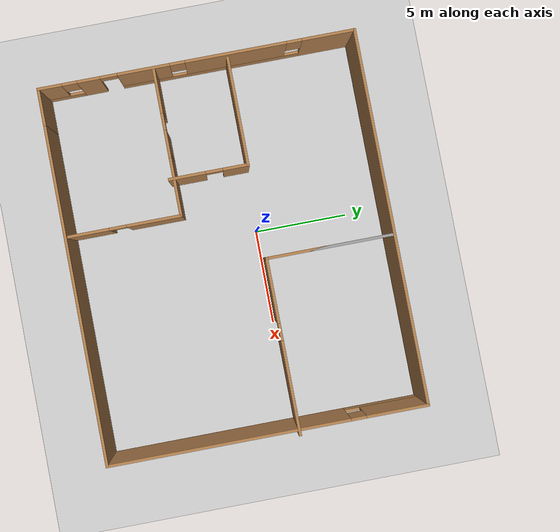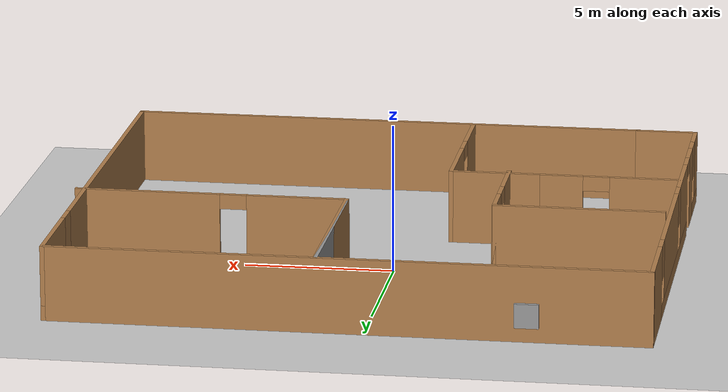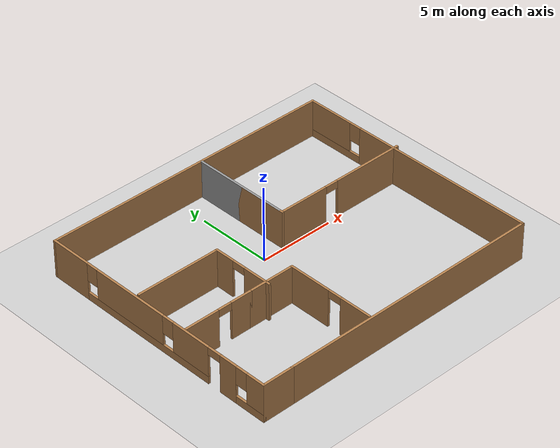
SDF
<sdf version="1.7">
 <world name="default">
  <light name="sun" type="directional">
   <pose>0 0 10 0 -0 0</pose>
   <diffuse>0.8 0.8 0.8 1</diffuse>
   <specular>0.2 0.2 0.2 1</specular>
   <attenuation>
    <range>1000</range>
    <constant>0.9</constant>
    <linear>0.01</linear>
    <quadratic>0.001</quadratic>
   </attenuation>
   <direction>-0.5 0.1 -0.9</direction>
   <spot><inner_angle>0</inner_angle><outer_angle>0</outer_angle><falloff>0</falloff></spot>
  </light>
  <model name="ground_plane">
   <static>1</static>
   <link name="link">
    <collision name="collision">
     <geometry><plane><normal>0 0 1</normal><size>100 100</size></plane></geometry>
     <surface>
      <contact><collide_bitmask>65535</collide_bitmask></contact>
      <friction><ode><mu>100</mu><mu2>50</mu2></ode></friction>
     </surface>
    </collision>
    <visual name="visual">
     <cast_shadows>0</cast_shadows>
     <geometry><plane><normal>0 0 1</normal><size>100 100</size></plane></geometry>
     <material>
      <script><uri>file://media/materials/scripts/gazebo.material</uri><name>Gazebo/Grey</name></script>
     </material>
    </visual>
   </link>
  </model>
  <gravity>0 0 -9.8</gravity>
  <magnetic_field>6e-06 2.3e-05 -4.2e-05</magnetic_field>
  <atmosphere type="adiabatic"/>
  <physics type="ode">
   <max_step_size>0.001</max_step_size>
   <real_time_factor>1</real_time_factor>
   <real_time_update_rate>1000</real_time_update_rate>
  </physics>
  <scene><ambient>0.4 0.4 0.4 1</ambient><background>0.7 0.7 0.7 1</background><shadows>1</shadows></scene>
  <spherical_coordinates>
   <surface_model>EARTH_WGS84</surface_model>
   <latitude_deg>0</latitude_deg>
   <longitude_deg>0</longitude_deg>
   <elevation>0</elevation>
   <heading_deg>0</heading_deg>
  </spherical_coordinates>
  <model name="nha">
   <pose>0.71255 -1.43699 0 0 -0 0</pose>
   <link name="Wall_10">
    <pose>9.67365 -0 0 0 -0 1.5708</pose>
    <visual name="Wall_10_Visual_0">
     <pose>-2.03199 0 1.25 0 -0 0</pose>
     <geometry><box><size>12.686 0.15 2.5</size></box></geometry>
     <material>
      <script><uri>file://media/materials/scripts/gazebo.material</uri><name>Gazebo/Wood</name></script>
      <ambient>1 1 1 1</ambient>
     </material>
     <meta><layer>0</layer></meta>
    </visual>
    <collision name="Wall_10_Collision_0">
     <geometry><box><size>12.686 0.15 2.5</size></box></geometry>
     <pose>-2.03199 0 1.25 0 -0 0</pose>
    </collision>
    <visual name="Wall_10_Visual_1">
     <pose>6.34301 0 0.25 0 -0 0</pose>
     <geometry><box><size>4.06397 0.15 0.5</size></box></geometry>
     <material>
      <script><uri>file://media/materials/scripts/gazebo.material</uri><name>Gazebo/Wood</name></script>
      <ambient>1 1 1 1</ambient>
     </material>
     <meta><layer>0</layer></meta>
    </visual>
    <collision name="Wall_10_Collision_1">
     <geometry><box><size>4.06397 0.15 0.5</size></box></geometry>
     <pose>6.34301 0 0.25 0 -0 0</pose>
    </collision>
    <visual name="Wall_10_Visual_2">
     <pose>6.74301 0 1.5 0 -0 0</pose>
     <geometry><box><size>3.26397 0.15 2</size></box></geometry>
     <material>
      <script><uri>file://media/materials/scripts/gazebo.material</uri><name>Gazebo/Wood</name></script>
      <ambient>1 1 1 1</ambient>
     </material>
     <meta><layer>0</layer></meta>
    </visual>
    <collision name="Wall_10_Collision_2">
     <geometry><box><size>3.26397 0.15 2</size></box></geometry>
     <pose>6.74301 0 1.5 0 -0 0</pose>
    </collision>
    <visual name="Wall_10_Visual_3">
     <pose>4.71103 0 1.9 0 -0 0</pose>
     <geometry><box><size>0.8 0.15 1.2</size></box></geometry>
     <material>
      <script><uri>file://media/materials/scripts/gazebo.material</uri><name>Gazebo/Wood</name></script>
      <ambient>1 1 1 1</ambient>
     </material>
     <meta><layer>0</layer></meta>
    </visual>
    <collision name="Wall_10_Collision_3">
     <geometry><box><size>0.8 0.15 1.2</size></box></geometry>
     <pose>4.71103 0 1.9 0 -0 0</pose>
    </collision>
   </link>
   <link name="Wall_11">
    <collision name="Wall_11_Collision">
     <geometry><box><size>19.75 0.15 2.5</size></box></geometry>
     <pose>0 0 1.25 0 -0 0</pose>
    </collision>
    <visual name="Wall_11_Visual">
     <pose>0 0 1.25 0 -0 0</pose>
     <geometry><box><size>19.75 0.15 2.5</size></box></geometry>
     <material>
      <script><uri>file://media/materials/scripts/gazebo.material</uri><name>Gazebo/Wood</name></script>
      <ambient>1 1 1 1</ambient>
     </material>
     <meta><layer>0</layer></meta>
    </visual>
    <pose>-0.126353 8.3 0 0 -0 3.14159</pose>
   </link>
   <link name="Wall_12">
    <pose>-9.92635 -0 0 0 -0 -1.5708</pose>
    <visual name="Wall_12_Visual_0">
     <pose>-6.95237 0 1.25 0 -0 0</pose>
     <geometry><box><size>2.84526 0.15 2.5</size></box></geometry>
     <material>
      <script><uri>file://media/materials/scripts/gazebo.material</uri><name>Gazebo/Wood</name></script>
      <ambient>1 1 1 1</ambient>
     </material>
     <meta><layer>0</layer></meta>
    </visual>
    <collision name="Wall_12_Collision_0">
     <geometry><box><size>2.84526 0.15 2.5</size></box></geometry>
     <pose>-6.95237 0 1.25 0 -0 0</pose>
    </collision>
    <visual name="Wall_12_Visual_1">
     <pose>5.67347 0 1.25 0 -0 0</pose>
     <geometry><box><size>1.21323 0.15 2.5</size></box></geometry>
     <material>
      <script><uri>file://media/materials/scripts/gazebo.material</uri><name>Gazebo/Wood</name></script>
      <ambient>1 1 1 1</ambient>
     </material>
     <meta><layer>0</layer></meta>
    </visual>
    <collision name="Wall_12_Collision_1">
     <geometry><box><size>1.21323 0.15 2.5</size></box></geometry>
     <pose>5.67347 0 1.25 0 -0 0</pose>
    </collision>
    <visual name="Wall_12_Visual_2">
     <pose>-0.681446 0 0.25 0 -0 0</pose>
     <geometry><box><size>9.69659 0.15 0.5</size></box></geometry>
     <material>
      <script><uri>file://media/materials/scripts/gazebo.material</uri><name>Gazebo/Wood</name></script>
      <ambient>1 1 1 1</ambient>
     </material>
     <meta><layer>0</layer></meta>
    </visual>
    <collision name="Wall_12_Collision_2">
     <geometry><box><size>9.69659 0.15 0.5</size></box></geometry>
     <pose>-0.681446 0 0.25 0 -0 0</pose>
    </collision>
    <visual name="Wall_12_Visual_3">
     <pose>7.32754 0 0.25 0 -0 0</pose>
     <geometry><box><size>2.09492 0.15 0.5</size></box></geometry>
     <material>
      <script><uri>file://media/materials/scripts/gazebo.material</uri><name>Gazebo/Wood</name></script>
      <ambient>1 1 1 1</ambient>
     </material>
     <meta><layer>0</layer></meta>
    </visual>
    <collision name="Wall_12_Collision_3">
     <geometry><box><size>2.09492 0.15 0.5</size></box></geometry>
     <pose>7.32754 0 0.25 0 -0 0</pose>
    </collision>
    <visual name="Wall_12_Visual_4">
     <pose>-2.05672 0 1.5 0 -0 0</pose>
     <geometry><box><size>5.34605 0.15 2</size></box></geometry>
     <material>
      <script><uri>file://media/materials/scripts/gazebo.material</uri><name>Gazebo/Wood</name></script>
      <ambient>1 1 1 1</ambient>
     </material>
     <meta><layer>0</layer></meta>
    </visual>
    <collision name="Wall_12_Collision_4">
     <geometry><box><size>5.34605 0.15 2</size></box></geometry>
     <pose>-2.05672 0 1.5 0 -0 0</pose>
    </collision>
    <visual name="Wall_12_Visual_5">
     <pose>2.79158 0 1.5 0 -0 0</pose>
     <geometry><box><size>2.75055 0.15 2</size></box></geometry>
     <material>
      <script><uri>file://media/materials/scripts/gazebo.material</uri><name>Gazebo/Wood</name></script>
      <ambient>1 1 1 1</ambient>
     </material>
     <meta><layer>0</layer></meta>
    </visual>
    <collision name="Wall_12_Collision_5">
     <geometry><box><size>2.75055 0.15 2</size></box></geometry>
     <pose>2.79158 0 1.5 0 -0 0</pose>
    </collision>
    <visual name="Wall_12_Visual_6">
     <pose>2.79158 0 1.5 0 -0 0</pose>
     <geometry><box><size>2.75055 0.15 2</size></box></geometry>
     <material>
      <script><uri>file://media/materials/scripts/gazebo.material</uri><name>Gazebo/Wood</name></script>
      <ambient>1 1 1 1</ambient>
     </material>
     <meta><layer>0</layer></meta>
    </visual>
    <collision name="Wall_12_Collision_6">
     <geometry><box><size>2.75055 0.15 2</size></box></geometry>
     <pose>2.79158 0 1.5 0 -0 0</pose>
    </collision>
    <visual name="Wall_12_Visual_7">
     <pose>7.72754 0 1.5 0 -0 0</pose>
     <geometry><box><size>1.29492 0.15 2</size></box></geometry>
     <material>
      <script><uri>file://media/materials/scripts/gazebo.material</uri><name>Gazebo/Wood</name></script>
      <ambient>1 1 1 1</ambient>
     </material>
     <meta><layer>0</layer></meta>
    </visual>
    <collision name="Wall_12_Collision_7">
     <geometry><box><size>1.29492 0.15 2</size></box></geometry>
     <pose>7.72754 0 1.5 0 -0 0</pose>
    </collision>
    <visual name="Wall_12_Visual_8">
     <pose>-5.12974 0 1.9 0 -0 0</pose>
     <geometry><box><size>0.8 0.15 1.2</size></box></geometry>
     <material>
      <script><uri>file://media/materials/scripts/gazebo.material</uri><name>Gazebo/Wood</name></script>
      <ambient>1 1 1 1</ambient>
     </material>
     <meta><layer>0</layer></meta>
    </visual>
    <collision name="Wall_12_Collision_8">
     <geometry><box><size>0.8 0.15 1.2</size></box></geometry>
     <pose>-5.12974 0 1.9 0 -0 0</pose>
    </collision>
    <visual name="Wall_12_Visual_9">
     <pose>6.68008 0 1.9 0 -0 0</pose>
     <geometry><box><size>0.8 0.15 1.2</size></box></geometry>
     <material>
      <script><uri>file://media/materials/scripts/gazebo.material</uri><name>Gazebo/Wood</name></script>
      <ambient>1 1 1 1</ambient>
     </material>
     <meta><layer>0</layer></meta>
    </visual>
    <collision name="Wall_12_Collision_9">
     <geometry><box><size>0.8 0.15 1.2</size></box></geometry>
     <pose>6.68008 0 1.9 0 -0 0</pose>
    </collision>
    <visual name="Wall_12_Visual_10">
     <pose>1.0163 0 1.9 0 -0 0</pose>
     <geometry><box><size>0.8 0.15 1.2</size></box></geometry>
     <material>
      <script><uri>file://media/materials/scripts/gazebo.material</uri><name>Gazebo/Wood</name></script>
      <ambient>1 1 1 1</ambient>
     </material>
     <meta><layer>0</layer></meta>
    </visual>
    <collision name="Wall_12_Collision_10">
     <geometry><box><size>0.8 0.15 1.2</size></box></geometry>
     <pose>1.0163 0 1.9 0 -0 0</pose>
    </collision>
    <visual name="Wall_12_Visual_11">
     <pose>4.61685 0 2.25 0 -0 0</pose>
     <geometry><box><size>0.9 0.15 0.5</size></box></geometry>
     <material>
      <script><uri>file://media/materials/scripts/gazebo.material</uri><name>Gazebo/Wood</name></script>
      <ambient>1 1 1 1</ambient>
     </material>
     <meta><layer>0</layer></meta>
    </visual>
    <collision name="Wall_12_Collision_11">
     <geometry><box><size>0.9 0.15 0.5</size></box></geometry>
     <pose>4.61685 0 2.25 0 -0 0</pose>
    </collision>
    <visual name="Wall_12_Visual_12">
     <pose>4.61685 0 2.25 0 -0 0</pose>
     <geometry><box><size>0.9 0.15 0.5</size></box></geometry>
     <material>
      <script><uri>file://media/materials/scripts/gazebo.material</uri><name>Gazebo/Wood</name></script>
      <ambient>1 1 1 1</ambient>
     </material>
     <meta><layer>0</layer></meta>
    </visual>
    <collision name="Wall_12_Collision_12">
     <geometry><box><size>0.9 0.15 0.5</size></box></geometry>
     <pose>4.61685 0 2.25 0 -0 0</pose>
    </collision>
   </link>
   <link name="Wall_13">
    <collision name="Wall_13_Collision">
     <geometry><box><size>2.15 0.15 2.5</size></box></geometry>
     <pose>0 0 1.25 0 -0 0</pose>
    </collision>
    <visual name="Wall_13_Visual">
     <pose>0 0 1.25 0 -0 0</pose>
     <geometry><box><size>2.15 0.15 2.5</size></box></geometry>
     <material>
      <script><uri>file://media/materials/scripts/gazebo.material</uri><name>Gazebo/Wood</name></script>
      <ambient>1 1 1 1</ambient>
     </material>
     <meta><layer>0</layer></meta>
    </visual>
    <pose>-8.92635 -8.3 0 0 -0 0</pose>
   </link>
   <link name="Wall_15">
    <pose>-7.54802 -2.27043 0 0 -0 0</pose>
    <visual name="Wall_15_Visual_0">
     <pose>-1.17985 0 1.25 0 -0 0</pose>
     <geometry><box><size>2.39031 0.15 2.5</size></box></geometry>
     <material>
      <script><uri>file://media/materials/scripts/gazebo.material</uri><name>Gazebo/Wood</name></script>
      <ambient>1 1 1 1</ambient>
     </material>
     <meta><layer>0</layer></meta>
    </visual>
    <collision name="Wall_15_Collision_0">
     <geometry><box><size>2.39031 0.15 2.5</size></box></geometry>
     <pose>-1.17985 0 1.25 0 -0 0</pose>
    </collision>
    <visual name="Wall_15_Visual_1">
     <pose>1.64515 0 1.25 0 -0 0</pose>
     <geometry><box><size>1.45969 0.15 2.5</size></box></geometry>
     <material>
      <script><uri>file://media/materials/scripts/gazebo.material</uri><name>Gazebo/Wood</name></script>
      <ambient>1 1 1 1</ambient>
     </material>
     <meta><layer>0</layer></meta>
    </visual>
    <collision name="Wall_15_Collision_1">
     <geometry><box><size>1.45969 0.15 2.5</size></box></geometry>
     <pose>1.64515 0 1.25 0 -0 0</pose>
    </collision>
    <visual name="Wall_15_Visual_2">
     <pose>0.465307 0 2.25 0 -0 0</pose>
     <geometry><box><size>0.9 0.15 0.5</size></box></geometry>
     <material>
      <script><uri>file://media/materials/scripts/gazebo.material</uri><name>Gazebo/Wood</name></script>
      <ambient>1 1 1 1</ambient>
     </material>
     <meta><layer>0</layer></meta>
    </visual>
    <collision name="Wall_15_Collision_2">
     <geometry><box><size>0.9 0.15 0.5</size></box></geometry>
     <pose>0.465307 0 2.25 0 -0 0</pose>
    </collision>
   </link>
   <link name="Wall_21">
    <collision name="Wall_21_Collision">
     <geometry><box><size>3.25 0.15 2.5</size></box></geometry>
     <pose>0 0 1.25 0 -0 0</pose>
    </collision>
    <visual name="Wall_21_Visual">
     <pose>0 0 1.25 0 -0 0</pose>
     <geometry><box><size>3.25 0.15 2.5</size></box></geometry>
     <material>
      <script><uri>file://media/materials/scripts/gazebo.material</uri><name>Gazebo/Wood</name></script>
      <ambient>1 1 1 1</ambient>
     </material>
     <meta><layer>0</layer></meta>
    </visual>
    <pose>-3.69802 -2.27043 0 0 -0 0</pose>
   </link>
   <link name="Wall_22">
    <pose>-2.14802 -5.19543 0 0 -0 -1.5708</pose>
    <visual name="Wall_22_Visual_0">
     <pose>-1.53733 0 1.25 0 -0 0</pose>
     <geometry><box><size>2.92533 0.15 2.5</size></box></geometry>
     <material>
      <script><uri>file://media/materials/scripts/gazebo.material</uri><name>Gazebo/Wood</name></script>
      <ambient>1 1 1 1</ambient>
     </material>
     <meta><layer>0</layer></meta>
    </visual>
    <collision name="Wall_22_Collision_0">
     <geometry><box><size>2.92533 0.15 2.5</size></box></geometry>
     <pose>-1.53733 0 1.25 0 -0 0</pose>
    </collision>
    <visual name="Wall_22_Visual_1">
     <pose>1.91267 0 1.25 0 -0 0</pose>
     <geometry><box><size>2.17467 0.15 2.5</size></box></geometry>
     <material>
      <script><uri>file://media/materials/scripts/gazebo.material</uri><name>Gazebo/Wood</name></script>
      <ambient>1 1 1 1</ambient>
     </material>
     <meta><layer>0</layer></meta>
    </visual>
    <collision name="Wall_22_Collision_1">
     <geometry><box><size>2.17467 0.15 2.5</size></box></geometry>
     <pose>1.91267 0 1.25 0 -0 0</pose>
    </collision>
    <visual name="Wall_22_Visual_2">
     <pose>0.375332 0 2.25 0 -0 0</pose>
     <geometry><box><size>0.9 0.15 0.5</size></box></geometry>
     <material>
      <script><uri>file://media/materials/scripts/gazebo.material</uri><name>Gazebo/Wood</name></script>
      <ambient>1 1 1 1</ambient>
     </material>
     <meta><layer>0</layer></meta>
    </visual>
    <collision name="Wall_22_Collision_2">
     <geometry><box><size>0.9 0.15 0.5</size></box></geometry>
     <pose>0.375332 0 2.25 0 -0 0</pose>
    </collision>
   </link>
   <link name="Wall_24">
    <collision name="Wall_24_Collision">
     <geometry><box><size>5.75 0.15 2.5</size></box></geometry>
     <pose>0 0 1.25 0 -0 0</pose>
    </collision>
    <visual name="Wall_24_Visual">
     <pose>0 0 1.25 0 -0 0</pose>
     <geometry><box><size>5.75 0.15 2.5</size></box></geometry>
     <material>
      <script><uri>file://media/materials/scripts/gazebo.material</uri><name>Gazebo/Wood</name></script>
      <ambient>1 1 1 1</ambient>
     </material>
     <meta><layer>0</layer></meta>
    </visual>
    <pose>-6.88805 1.59393 0 0 -0 0</pose>
   </link>
   <link name="Wall_25">
    <pose>-4.08805 -0.456075 0 0 -0 -1.5708</pose>
    <visual name="Wall_25_Visual_0">
     <pose>-1.42855 0 1.25 0 -0 0</pose>
     <geometry><box><size>1.39291 0.15 2.5</size></box></geometry>
     <material>
      <script><uri>file://media/materials/scripts/gazebo.material</uri><name>Gazebo/Wood</name></script>
      <ambient>1 1 1 1</ambient>
     </material>
     <meta><layer>0</layer></meta>
    </visual>
    <collision name="Wall_25_Collision_0">
     <geometry><box><size>1.39291 0.15 2.5</size></box></geometry>
     <pose>-1.42855 0 1.25 0 -0 0</pose>
    </collision>
    <visual name="Wall_25_Visual_1">
     <pose>1.14645 0 1.25 0 -0 0</pose>
     <geometry><box><size>1.95709 0.15 2.5</size></box></geometry>
     <material>
      <script><uri>file://media/materials/scripts/gazebo.material</uri><name>Gazebo/Wood</name></script>
      <ambient>1 1 1 1</ambient>
     </material>
     <meta><layer>0</layer></meta>
    </visual>
    <collision name="Wall_25_Collision_1">
     <geometry><box><size>1.95709 0.15 2.5</size></box></geometry>
     <pose>1.14645 0 1.25 0 -0 0</pose>
    </collision>
    <visual name="Wall_25_Visual_2">
     <pose>-0.282091 0 2.25 0 -0 0</pose>
     <geometry><box><size>0.9 0.15 0.5</size></box></geometry>
     <material>
      <script><uri>file://media/materials/scripts/gazebo.material</uri><name>Gazebo/Wood</name></script>
      <ambient>1 1 1 1</ambient>
     </material>
     <meta><layer>0</layer></meta>
    </visual>
    <collision name="Wall_25_Collision_2">
     <geometry><box><size>0.9 0.15 0.5</size></box></geometry>
     <pose>-0.282091 0 2.25 0 -0 0</pose>
    </collision>
   </link>
   <link name="Wall_27">
    <collision name="Wall_27_Collision">
     <geometry><box><size>6.5 0.15 2.5</size></box></geometry>
     <pose>0 0 1.25 0 -0 0</pose>
    </collision>
    <visual name="Wall_27_Visual">
     <pose>0 0 1.25 0 -0 0</pose>
     <geometry><box><size>6.5 0.15 2.5</size></box></geometry>
     <material>
      <script><uri>file://media/materials/scripts/gazebo.material</uri><name>Gazebo/Grey</name></script>
      <ambient>1 1 1 1</ambient>
     </material>
     <meta><layer>0</layer></meta>
    </visual>
    <pose>0.826353 5.04807 0 0 -0 1.5708</pose>
   </link>
   <link name="Wall_28">
    <collision name="Wall_28_Collision">
     <geometry><box><size>6.75 0.15 2.5</size></box></geometry>
     <pose>0 0 1.25 0 -0 0</pose>
    </collision>
    <visual name="Wall_28_Visual">
     <pose>0 0 1.25 0 -0 0</pose>
     <geometry><box><size>6.75 0.15 2.5</size></box></geometry>
     <material>
      <script><uri>file://media/materials/scripts/gazebo.material</uri><name>Gazebo/Wood</name></script>
      <ambient>1 1 1 1</ambient>
     </material>
     <meta><layer>0</layer></meta>
    </visual>
    <pose>0.826353 4.92307 0 0 -0 -1.5708</pose>
   </link>
   <link name="Wall_29">
    <pose>5.37635 1.62307 0 0 -0 0</pose>
    <visual name="Wall_29_Visual_0">
     <pose>-2.90502 0 1.25 0 -0 0</pose>
     <geometry><box><size>3.43996 0.15 2.5</size></box></geometry>
     <material>
      <script><uri>file://media/materials/scripts/gazebo.material</uri><name>Gazebo/Wood</name></script>
      <ambient>1 1 1 1</ambient>
     </material>
     <meta><layer>0</layer></meta>
    </visual>
    <collision name="Wall_29_Collision_0">
     <geometry><box><size>3.43996 0.15 2.5</size></box></geometry>
     <pose>-2.90502 0 1.25 0 -0 0</pose>
    </collision>
    <visual name="Wall_29_Visual_1">
     <pose>2.16998 0 1.25 0 -0 0</pose>
     <geometry><box><size>4.91004 0.15 2.5</size></box></geometry>
     <material>
      <script><uri>file://media/materials/scripts/gazebo.material</uri><name>Gazebo/Wood</name></script>
      <ambient>1 1 1 1</ambient>
     </material>
     <meta><layer>0</layer></meta>
    </visual>
    <collision name="Wall_29_Collision_1">
     <geometry><box><size>4.91004 0.15 2.5</size></box></geometry>
     <pose>2.16998 0 1.25 0 -0 0</pose>
    </collision>
    <visual name="Wall_29_Visual_2">
     <pose>-0.735039 0 2.25 0 -0 0</pose>
     <geometry><box><size>0.9 0.15 0.5</size></box></geometry>
     <material>
      <script><uri>file://media/materials/scripts/gazebo.material</uri><name>Gazebo/Wood</name></script>
      <ambient>1 1 1 1</ambient>
     </material>
     <meta><layer>0</layer></meta>
    </visual>
    <collision name="Wall_29_Collision_2">
     <geometry><box><size>0.9 0.15 0.5</size></box></geometry>
     <pose>-0.735039 0 2.25 0 -0 0</pose>
    </collision>
   </link>
   <link name="Wall_9">
    <collision name="Wall_9_Collision">
     <geometry><box><size>17.75 0.15 2.5</size></box></geometry>
     <pose>0 0 1.25 0 -0 0</pose>
    </collision>
    <visual name="Wall_9_Visual">
     <pose>0 0 1.25 0 -0 0</pose>
     <geometry><box><size>17.75 0.15 2.5</size></box></geometry>
     <material>
      <script><uri>file://media/materials/scripts/gazebo.material</uri><name>Gazebo/Wood</name></script>
      <ambient>0.760784 0.662745 0.627451 1</ambient>
     </material>
     <meta><layer>0</layer></meta>
    </visual>
    <pose>0.873647 -8.3 0 0 -0 0</pose>
   </link>
   <link name="Window_3">
    <collision name="Window_3_Collision">
     <geometry><box><size>0.8 0.17 0.8</size></box></geometry>
     <pose>0 0 0.4 0 -0 0</pose>
    </collision>
    <visual name="Window_3_Visual">
     <pose>0 0 0.4 0 -0 0</pose>
     <geometry><box><size>0.8 0.17 0.8</size></box></geometry>
     <material>
      <script><uri>file://media/materials/scripts/gazebo.material</uri><name>Gazebo/Grey</name></script>
     </material>
    </visual>
    <pose>-5.96614 8.43294 0.5 0 -0 0</pose>
   </link>
   <static>1</static>
  </model>
 </world>
</sdf>
